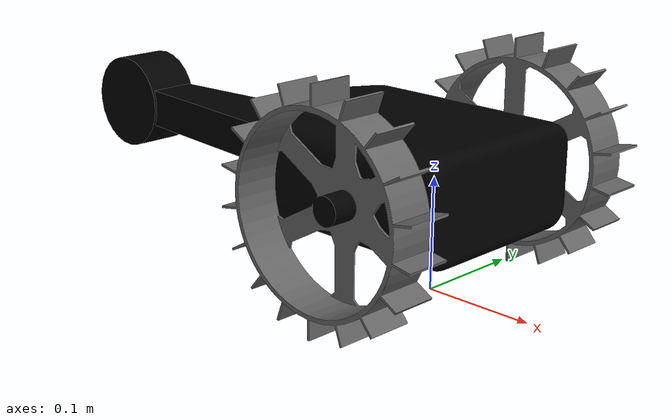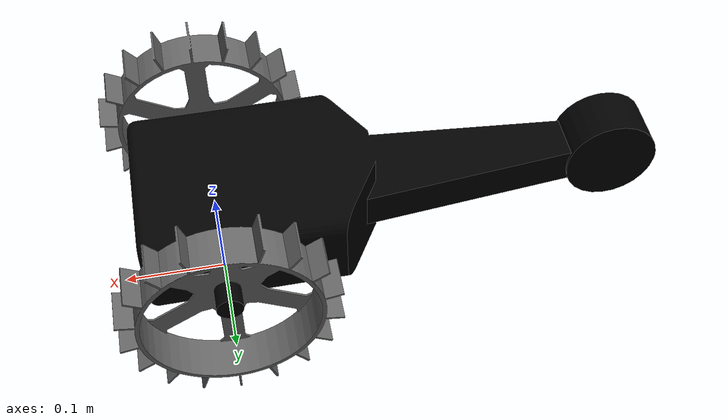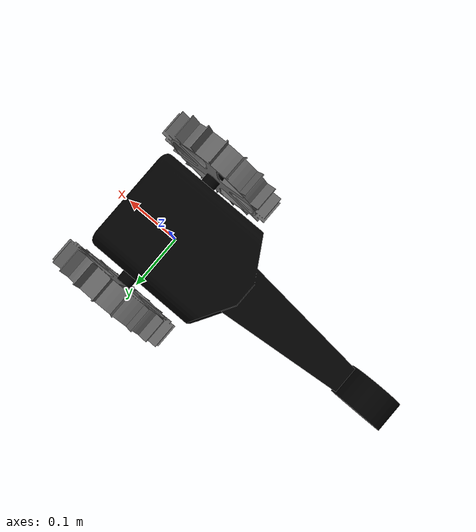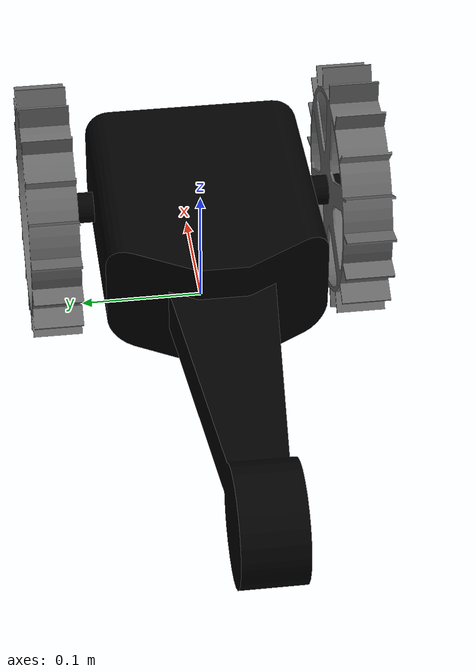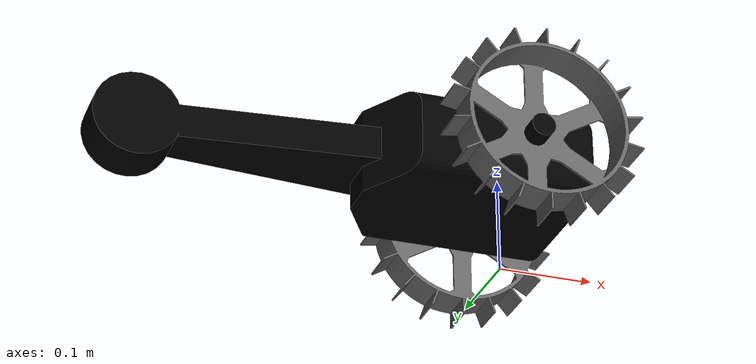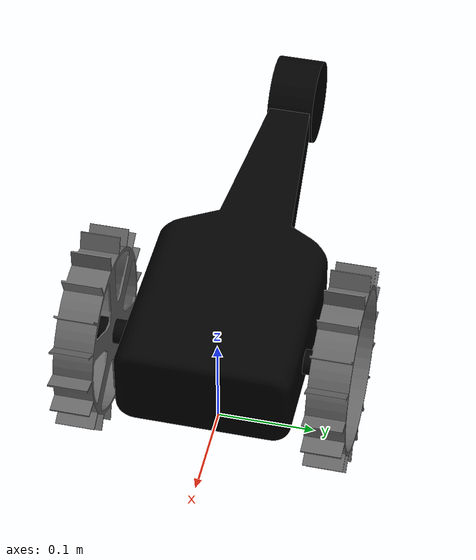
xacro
<?xml version="1.0"?>
<robot name="tetris" xmlns:xacro="http://www.ros.org/wiki/xacro">

  <xacro:property name="PI" value="3.1415926535897931"/>
  <xacro:property name="body_mass" value="1.89"/>
  <xacro:property name="wheel_width" value="0.04"/>
  <xacro:property name="wheel_diameter" value="0.2"/>
  <xacro:property name="wheel_separation" value="0.25"/>
  <xacro:property name="wheel_mass" value="0.425"/>
  <xacro:property name="tail_mass" value="0.162"/>
  <xacro:property name="ns" value="tetris" />

  <!-- Import all Gazebo-customization elements, including Gazebo colors -->
  <xacro:include filename="$(find tetris_description)/urdf/tetris.gazebo.xacro" />

  <xacro:property name="mesh_path" value="$(find tetris_description)/models" />

  <!-- Used for fixing robot to Gazebo 'base_link' -->
  <link name="base_footprint"/>

  <joint name="base_joint" type="fixed">
    <parent link="base_footprint"/>
    <child link="base_link"/>
    <origin xyz="0 0 0.1" />
  </joint>

  <link name="base_link">
    <visual>
      <origin xyz="0 0 0" rpy="-${PI/2} 0 -${PI/2}" />
      <geometry>
        <mesh filename="file://${mesh_path}/tetris/meshes/14-010-p008.dae" />
      </geometry>
      <material name="black">
        <color rgba="0 0 0 1"/>
      </material>
    </visual>
    <collision>
      <origin xyz="-0.03 0 0" />
      <geometry>
        <box size="0.2 0.2 0.1" />
      </geometry>
    </collision>
    <inertial>
      <origin xyz="-0.03 0 -0.04" />
      <mass value="${body_mass}" />
      <inertia ixx="${(1.0/12)*body_mass*(0.2*0.2+0.1*0.1)}" ixy="0.0" ixz="0.0" iyy="${(1.0/12)*body_mass*(0.2*0.2+0.1*0.1)}" iyz="0.0" izz="${(1.0/12)*body_mass*(0.2*0.2+0.2*0.2)}" />
    </inertial>
  </link>
  <link name="tail_link">
    <collision>
      <origin xyz="-0.28 0 0" />
      <geometry>
        <box size="0.3 0.05 0.07" />
      </geometry>
    </collision>
    <inertial>
      <mass value="${tail_mass}" />
      <inertia ixx="1" ixy="0.0" ixz="0.0" iyy="1" iyz="0.0" izz="1" />
    </inertial>
  </link>
  <joint name="base_to_tail" type="fixed">
    <parent link="base_link"/>
    <child link="tail_link"/>
    <origin xyz="0 0 0"/>
  </joint>

  <link name="right_wheel">
    <visual>
      <origin xyz="0 0 0" rpy="0 ${PI/2} 0"/>
      <geometry>
        <mesh filename="file://${mesh_path}/tetris/meshes/14-010-p006.dae" />
      </geometry>
      <material name="grey">
        <color rgba="0.4 0.4 0.4 1"/>
      </material>
    </visual>
    <collision>
      <geometry>
        <cylinder radius="${wheel_diameter/2}" length="${wheel_width}"/>
      </geometry>
    </collision>
    <inertial>
      <mass value="${wheel_mass}" />
      <inertia ixx="${(1.0/12)*wheel_mass*(3*wheel_diameter/2*wheel_diameter/2+wheel_width*wheel_width)}" ixy="0.0" ixz="0.0" iyy="${(1.0/12)*wheel_mass*(3*wheel_diameter/2*wheel_diameter/2+wheel_width*wheel_width)}" iyz="0.0" izz="${(1.0/12)*wheel_mass*(wheel_diameter/2*wheel_diameter/2)}" />
    </inertial>
  </link>
  <link name="left_wheel">
    <visual>
      <origin xyz="0 0 0" rpy="0 -${PI/2} 0"/>
      <geometry>
        <mesh filename="file://${mesh_path}/tetris/meshes/14-010-p006.dae" />
      </geometry>
      <material name="grey" />
    </visual>
    <collision>
      <geometry>
        <cylinder radius="${wheel_diameter/2}" length="${wheel_width}"/>
      </geometry>
    </collision>
    <inertial>
      <mass value="${wheel_mass}" />
      <inertia ixx="${(1.0/12)*wheel_mass*(3*wheel_diameter/2*wheel_diameter/2+wheel_width*wheel_width)}" ixy="0.0" ixz="0.0" iyy="${(1.0/12)*wheel_mass*(3*wheel_diameter/2*wheel_diameter/2+wheel_width*wheel_width)}" iyz="0.0" izz="${(1.0/12)*wheel_mass*(wheel_diameter/2*wheel_diameter/2)}" />
    </inertial>
  </link>

  <joint name="right_wheel_joint" type="continuous">
    <axis xyz="0 0 1" />
    <limit effort="100" velocity="100"/>
    <joint_properties damping="0.0" friction="0.0"/>
    <dynamics damping="0.7"/>
    <origin xyz="0 -${wheel_separation/2} 0" rpy="-${PI/2} 0 0"/>
    <parent link="base_link"/>
    <child link="right_wheel"/>
  </joint>
  <joint name="left_wheel_joint" type="continuous">
    <axis xyz="0 0 1" />
    <limit effort="100" velocity="100"/>
    <joint_properties damping="0.0" friction="0.0"/>
    <dynamics damping="0.7"/>
    <origin xyz="0 ${wheel_separation/2} 0" rpy="-${PI/2} 0 0"/>
    <parent link="base_link"/>
    <child link="left_wheel"/>
  </joint>

  <transmission name="right_wheel_trans">
    <type>transmission_interface/SimpleTransmission</type>
    <joint name="right_wheel_joint">
      <hardwareInterface>EffortJointInterface</hardwareInterface>
    </joint>
    <actuator name="right_wheel_motor">
    </actuator>
  </transmission>
  <transmission name="right_wheel_trans">
    <type>transmission_interface/SimpleTransmission</type>
    <joint name="left_wheel_joint">
      <hardwareInterface>EffortJointInterface</hardwareInterface>
    </joint>
    <actuator name="left_wheel_motor">
    </actuator>
  </transmission>

</robot>
